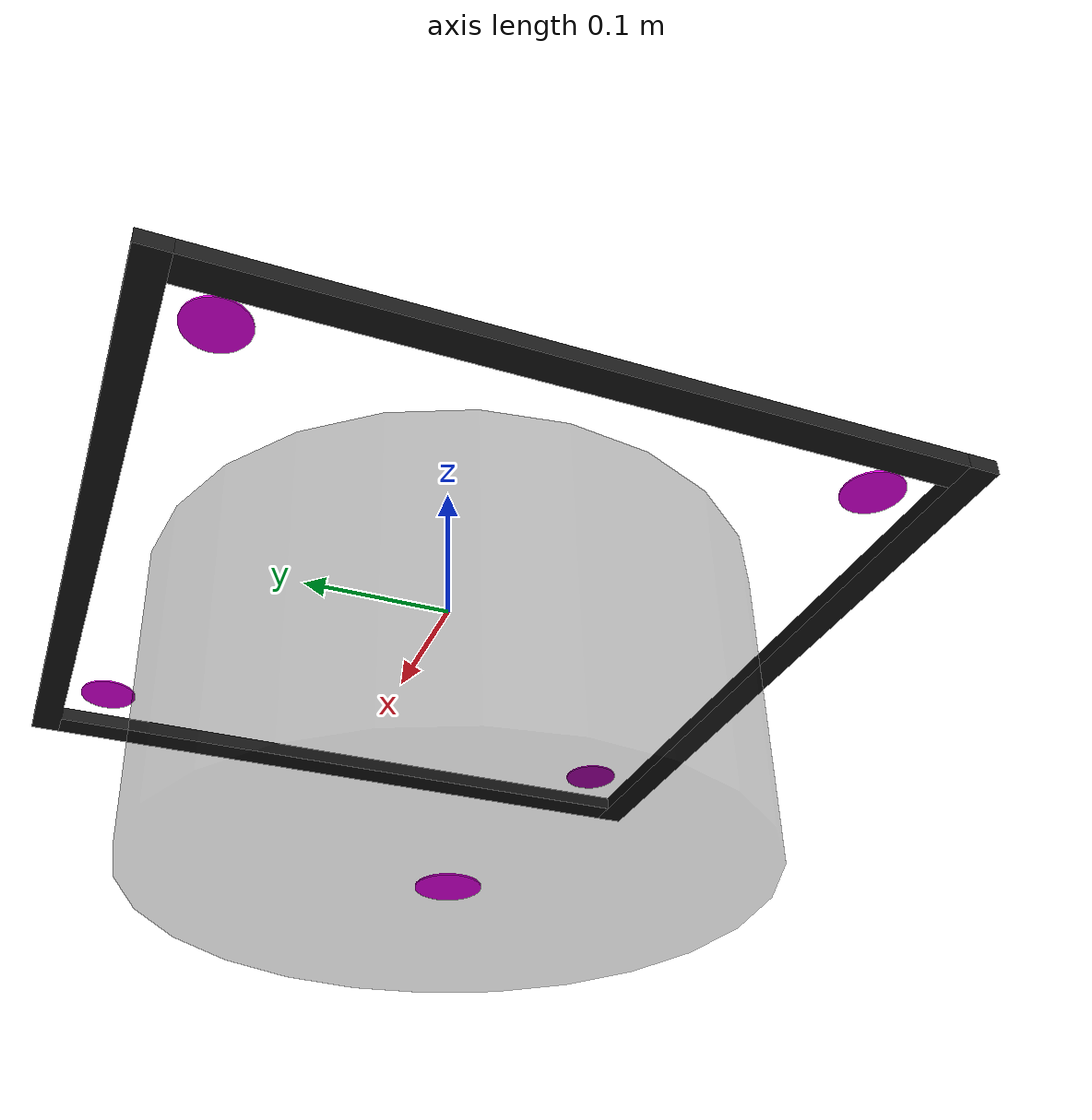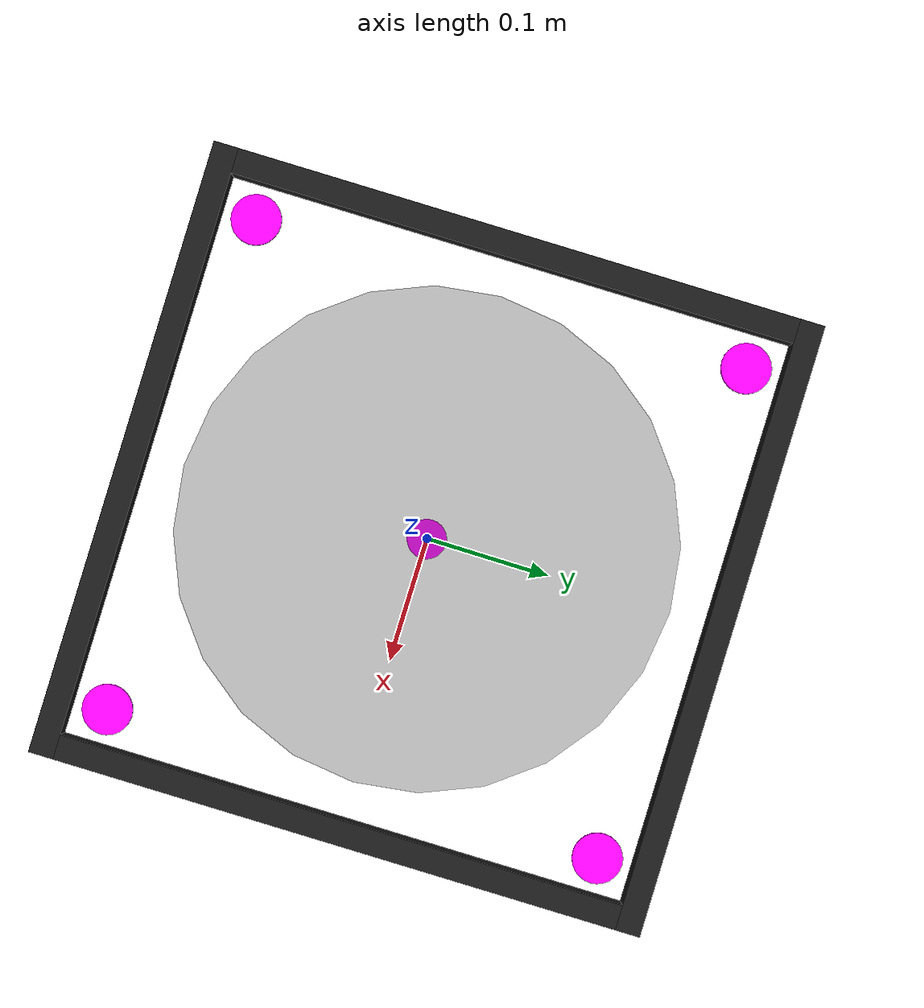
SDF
<?xml version="1.0" ?>
<sdf version="1.9">
  <model name="filet">
    <static>false</static>
    <link name="net_link">

      <!-- === CORRECTION INSTABILITÉ : INERTIE OBLIGATOIRE === -->
      <!-- Un objet avec collision doit avoir une masse, sinon Gazebo panique. -->
      <inertial>
        <mass>0.1</mass> <!-- On suppose que le cadre pèse 100g -->
        <inertia>
          <!-- Matrice d'inertie approximative pour un cadre carré plat -->
          <ixx>0.002</ixx>
          <ixy>0</ixy>
          <ixz>0</ixz>
          <iyy>0.002</iyy>
          <iyz>0</iyz>
          <izz>0.004</izz>
        </inertia>
      </inertial>

      <!-- === LE CADRE (4 Barres pour laisser le centre vide) === -->
      <!-- On remplace le carré plein par 4 bords de 2cm d'épaisseur -->

      <!-- Bord Haut (Y+) -->
      <visual name="frame_top">
        <pose>0 0.24 0 0 0 0</pose> <!-- Décalé de 24cm -->
        <geometry>
          <box>
            <size>0.50 0.02 0.01</size> <!-- Longueur 50cm, Largeur 2cm -->
          </box>
        </geometry>
        <material>
          <ambient>0.1 0.1 0.1 1</ambient>
          <diffuse>0.1 0.1 0.1 1</diffuse>
        </material>
      </visual>

      <!-- Bord Bas (Y-) -->
      <visual name="frame_bottom">
        <pose>0 -0.24 0 0 0 0</pose>
        <geometry>
          <box>
            <size>0.50 0.02 0.01</size>
          </box>
        </geometry>
        <material>
          <ambient>0.1 0.1 0.1 1</ambient>
          <diffuse>0.1 0.1 0.1 1</diffuse>
        </material>
      </visual>

      <!-- Bord Gauche (X-) -->
      <visual name="frame_left">
        <pose>-0.24 0 0 0 0 0</pose>
        <geometry>
          <box>
            <size>0.02 0.46 0.01</size> <!-- 46cm pour ne pas chevaucher -->
          </box>
        </geometry>
        <material>
          <ambient>0.1 0.1 0.1 1</ambient>
          <diffuse>0.1 0.1 0.1 1</diffuse>
        </material>
      </visual>

      <!-- Bord Droit (X+) -->
      <visual name="frame_right">
        <pose>0.24 0 0 0 0 0</pose>
        <geometry>
          <box>
            <size>0.02 0.46 0.01</size>
          </box>
        </geometry>
        <material>
          <ambient>0.1 0.1 0.1 1</ambient>
          <diffuse>0.1 0.1 0.1 1</diffuse>
        </material>
      </visual>

      <!-- Collision Simplifiée (On garde un carré plein pour la physique si on veut que le drone se pose dessus sans passer au travers, sinon mettre 4 collisions aussi) -->
      <!-- Ici on met 4 collisions pour que le 'cube' puisse tomber dedans si besoin -->

      <!-- LES 5 POINTS (Cylindres plats) -->
      <!-- Couleur : MAGENTA (1 0 1) pour être vu parfaitement -->
      <!-- Disposition : Carré de 20cm de côté (donc +/- 10cm du centre) -->

      <!-- POINT 1 : CENTRE -->
      <visual name="p1_center">
        <pose>0 0 -0.20 0 0 0</pose>
        <geometry>
          <cylinder>
            <radius>0.02</radius>
            <length>0.001</length>
          </cylinder>
        </geometry>
        <material>
          <ambient>1 0 1 1</ambient>
          <diffuse>1 0 1 1</diffuse>
          <emissive>1 0 1 1</emissive>
        </material>
      </visual>

      <!-- LIEN VISUEL FILET (Optionnel : pour voir le "sac") -->
      <!-- Juste un cylindre translucide pour matérialiser le volume -->
      <visual name="net_bag">
        <pose>0 0 -0.10 0 0 0</pose>
        <geometry>
          <cylinder>
            <radius>0.20</radius>
            <length>0.20</length>
          </cylinder>
        </geometry>
        <material>
          <ambient>0.1 0.1 0.1 0.3</ambient>
          <diffuse>0.1 0.1 0.1 0.3</diffuse> <!-- Transparent -->
        </material>
      </visual>

      <!-- POINT 2 : AVANT-GAUCHE (Top-Left dans l'image si drone vers le Nord) -->
      <visual name="p2_front_left">
        <pose>0.20 0.20 0.006 0 0 0</pose> <!-- X=20cm, Y=20cm -->
        <geometry>
          <cylinder>
            <radius>0.02</radius>
            <length>0.001</length>
          </cylinder>
        </geometry>
        <material>
          <ambient>1 0 1 1</ambient>
          <diffuse>1 0 1 1</diffuse>
          <emissive>1 0 1 1</emissive>
        </material>
      </visual>

      <!-- POINT 3 : AVANT-DROIT -->
      <visual name="p3_front_right">
        <pose>0.20 -0.20 0.006 0 0 0</pose>
        <geometry>
          <cylinder>
            <radius>0.02</radius>
            <length>0.001</length>
          </cylinder>
        </geometry>
        <material>
          <ambient>1 0 1 1</ambient>
          <diffuse>1 0 1 1</diffuse>
          <emissive>1 0 1 1</emissive>
        </material>
      </visual>

      <!-- POINT 4 : ARRIÈRE-DROIT -->
      <visual name="p4_back_right">
        <pose>-0.20 -0.20 0.006 0 0 0</pose>
        <geometry>
          <cylinder>
            <radius>0.02</radius>
            <length>0.001</length>
          </cylinder>
        </geometry>
        <material>
          <ambient>1 0 1 1</ambient>
          <diffuse>1 0 1 1</diffuse>
          <emissive>1 0 1 1</emissive>
        </material>
      </visual>

      <!-- POINT 5 : ARRIÈRE-GAUCHE -->
      <visual name="p5_back_left">
        <pose>-0.20 0.20 0.006 0 0 0</pose>
        <geometry>
          <cylinder>
            <radius>0.02</radius>
            <length>0.001</length>
          </cylinder>
        </geometry>
        <material>
          <ambient>1 0 1 1</ambient>
          <diffuse>1 0 1 1</diffuse>
          <emissive>1 0 1 1</emissive>
        </material>
      </visual>

    </link>
  </model>
</sdf>
